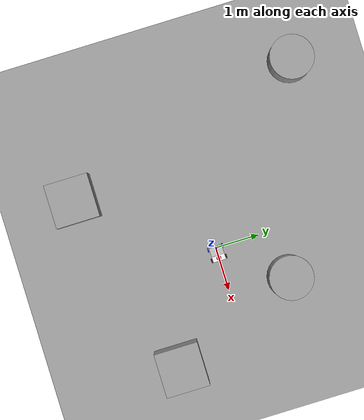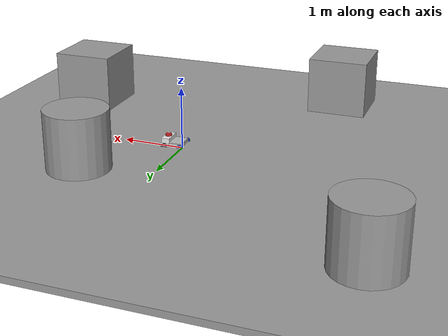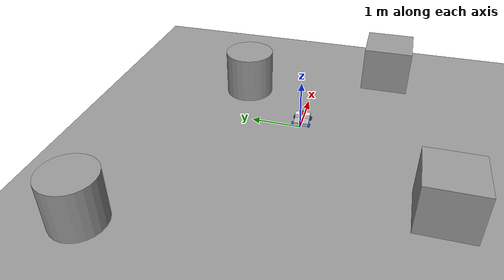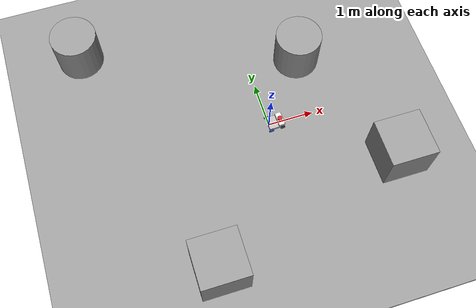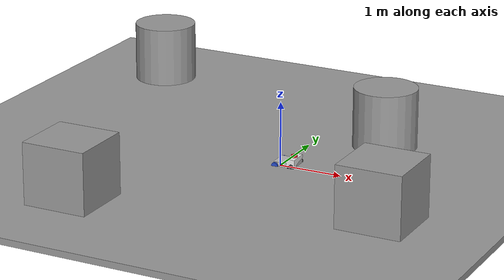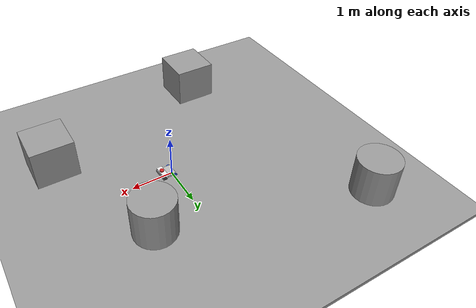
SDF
<sdf version="1.7">
 <world name="default">
  <light name="sun" type="directional">
   <pose>0 0 10 0 -0 0</pose>
   <diffuse>0.8 0.8 0.8 1</diffuse>
   <specular>0.2 0.2 0.2 1</specular>
   <attenuation>
    <range>1000</range>
    <constant>0.9</constant>
    <linear>0.01</linear>
    <quadratic>0.001</quadratic>
   </attenuation>
   <direction>-0.5 0.1 -0.9</direction>
   <spot><inner_angle>0</inner_angle><outer_angle>0</outer_angle><falloff>0</falloff></spot>
  </light>
  <model name="ground_plane">
   <static>1</static>
   <link name="link">
    <collision name="collision">
     <geometry><plane><normal>0 0 1</normal><size>100 100</size></plane></geometry>
     <surface>
      <contact><collide_bitmask>65535</collide_bitmask></contact>
      <friction><ode><mu>100</mu><mu2>50</mu2></ode></friction>
     </surface>
    </collision>
    <visual name="visual">
     <cast_shadows>0</cast_shadows>
     <geometry><plane><normal>0 0 1</normal><size>100 100</size></plane></geometry>
     <material>
      <script><uri>file://media/materials/scripts/gazebo.material</uri><name>Gazebo/Grey</name></script>
     </material>
    </visual>
   </link>
  </model>
  <gravity>0 0 -9.8</gravity>
  <magnetic_field>6e-06 2.3e-05 -4.2e-05</magnetic_field>
  <atmosphere type="adiabatic"/>
  <physics type="ode">
   <max_step_size>0.001</max_step_size>
   <real_time_factor>1</real_time_factor>
   <real_time_update_rate>1000</real_time_update_rate>
  </physics>
  <scene><ambient>0.4 0.4 0.4 1</ambient><background>0.7 0.7 0.7 1</background><shadows>1</shadows></scene>
  <audio><device>default</device></audio>
  <spherical_coordinates>
   <surface_model>EARTH_WGS84</surface_model>
   <latitude_deg>0</latitude_deg>
   <longitude_deg>0</longitude_deg>
   <elevation>0</elevation>
   <heading_deg>0</heading_deg>
  </spherical_coordinates>
  <model name="my_bot">
   <link name="base_link">
    <inertial>
     <pose>0.21274 0 0.031884 0 -0 0</pose>
     <mass>1.46</mass>
     <inertia>
      <ixx>0.0213768</ixx>
      <ixy>0</ixy>
      <ixz>-0.000714216</ixz>
      <iyy>0.013284</iyy>
      <iyz>-8.4855e-20</iyz>
      <izz>0.0279044</izz>
     </inertia>
    </inertial>
    <collision name="base_link_collision">
     <pose>0.14 0 0.015 0 -0 0</pose>
     <geometry><box><size>0.34 0.3 0.09</size></box></geometry>
    </collision>
    <collision name="base_link_fixed_joint_lump__F_left_wheel_collision_1">
     <pose>0.26 0.17 0 1.5708 -0 0</pose>
     <geometry><cylinder><length>0.03</length><radius>0.052</radius></cylinder></geometry>
     <surface><friction><ode><mu>0.001</mu><mu2>0.001</mu2></ode></friction></surface>
    </collision>
    <collision name="base_link_fixed_joint_lump__F_right_wheel_collision_2">
     <pose>0.26 -0.17 0 1.5708 -0 0</pose>
     <geometry><cylinder><length>0.03</length><radius>0.052</radius></cylinder></geometry>
     <surface><friction><ode><mu>0.001</mu><mu2>0.001</mu2></ode></friction></surface>
    </collision>
    <collision name="base_link_fixed_joint_lump__chassis_collision_3">
     <pose>0.245 0 0.05 0 -0 0</pose>
     <geometry><box><size>0.13 0.3 0.15</size></box></geometry>
    </collision>
    <collision name="base_link_fixed_joint_lump__laser_frame_collision_4">
     <pose>0.245 0 0.1405 0 -0 0</pose>
     <geometry><cylinder><length>0.03</length><radius>0.052</radius></cylinder></geometry>
    </collision>
    <visual name="base_link_visual">
     <pose>0.14 0 0.015 0 -0 0</pose>
     <geometry><box><size>0.34 0.3 0.09</size></box></geometry>
    </visual>
    <visual name="base_link_fixed_joint_lump__F_left_wheel_visual_1">
     <pose>0.26 0.17 0 1.5708 -0 0</pose>
     <geometry><cylinder><length>0.03</length><radius>0.052</radius></cylinder></geometry>
     <material>
      <script><name>Gazebo/Black</name><uri>file://media/materials/scripts/gazebo.material</uri></script>
     </material>
    </visual>
    <visual name="base_link_fixed_joint_lump__F_right_wheel_visual_2">
     <pose>0.26 -0.17 0 1.5708 -0 0</pose>
     <geometry><cylinder><length>0.03</length><radius>0.052</radius></cylinder></geometry>
     <material>
      <script><name>Gazebo/Black</name><uri>file://media/materials/scripts/gazebo.material</uri></script>
     </material>
    </visual>
    <visual name="base_link_fixed_joint_lump__chassis_visual_3">
     <pose>0.245 0 0.05 0 -0 0</pose>
     <geometry><box><size>0.13 0.3 0.15</size></box></geometry>
     <material>
      <script><name>Gazebo/White</name><uri>file://media/materials/scripts/gazebo.material</uri></script>
     </material>
    </visual>
    <visual name="base_link_fixed_joint_lump__laser_frame_visual_4">
     <pose>0.245 0 0.1405 0 -0 0</pose>
     <geometry><cylinder><length>0.03</length><radius>0.052</radius></cylinder></geometry>
     <material>
      <script><name>Gazebo/Red</name><uri>file://media/materials/scripts/gazebo.material</uri></script>
     </material>
    </visual>
    <sensor name="laser" type="ray">
     <visualize>1</visualize>
     <update_rate>10</update_rate>
     <ray>
      <scan>
       <horizontal>
        <samples>360</samples>
        <min_angle>-3.14</min_angle>
        <max_angle>3.14</max_angle>
        <resolution>1</resolution>
       </horizontal>
       <vertical><samples>1</samples><min_angle>0</min_angle><max_angle>0</max_angle></vertical>
      </scan>
      <range><min>0.3</min><max>12</max></range>
     </ray>
     <plugin name="laser_controller" filename="libgazebo_ros_ray_sensor.so">
      <ros><argument>~/out:=scan</argument></ros>
      <output_type>sensor_msgs/LaserScan</output_type>
      <frame_name>laser_frame</frame_name>
     </plugin>
     <pose>0.245 0 0.1405 0 -0 0</pose>
    </sensor>
   </link>
   <joint name="left_wheel_joint" type="revolute">
    <pose relative_to="base_link">0 0.17 0 -1.5708 0 0</pose>
    <parent>base_link</parent>
    <child>left_wheel</child>
    <axis>
     <xyz>0 0 1</xyz>
     <limit><lower>-1e+16</lower><upper>1e+16</upper></limit>
     <dynamics><spring_reference>0</spring_reference><spring_stiffness>0</spring_stiffness></dynamics>
    </axis>
   </joint>
   <link name="left_wheel">
    <pose relative_to="left_wheel_joint">0 0 0 0 -0 0</pose>
    <inertial>
     <mass>0.18</mass>
     <inertia>
      <ixx>0.00013518</ixx>
      <ixy>0</ixy>
      <ixz>0</ixz>
      <iyy>0.00013518</iyy>
      <iyz>0</iyz>
      <izz>0.00024336</izz>
     </inertia>
    </inertial>
    <collision name="left_wheel_collision">
     <geometry><cylinder><length>0.03</length><radius>0.052</radius></cylinder></geometry>
    </collision>
    <visual name="left_wheel_visual">
     <geometry><cylinder><length>0.03</length><radius>0.052</radius></cylinder></geometry>
     <material>
      <script><name>Gazebo/Blue</name><uri>file://media/materials/scripts/gazebo.material</uri></script>
     </material>
    </visual>
   </link>
   <joint name="right_wheel_joint" type="revolute">
    <pose relative_to="base_link">0 -0.17 0 -1.5708 0 0</pose>
    <parent>base_link</parent>
    <child>right_wheel</child>
    <axis>
     <xyz>0 0 1</xyz>
     <limit><lower>-1e+16</lower><upper>1e+16</upper></limit>
     <dynamics><spring_reference>0</spring_reference><spring_stiffness>0</spring_stiffness></dynamics>
    </axis>
   </joint>
   <link name="right_wheel">
    <pose relative_to="right_wheel_joint">0 0 0 0 -0 0</pose>
    <inertial>
     <mass>0.18</mass>
     <inertia>
      <ixx>0.00013518</ixx>
      <ixy>0</ixy>
      <ixz>0</ixz>
      <iyy>0.00013518</iyy>
      <iyz>0</iyz>
      <izz>0.00024336</izz>
     </inertia>
    </inertial>
    <collision name="right_wheel_collision">
     <geometry><cylinder><length>0.03</length><radius>0.052</radius></cylinder></geometry>
    </collision>
    <visual name="right_wheel_visual">
     <geometry><cylinder><length>0.03</length><radius>0.052</radius></cylinder></geometry>
     <material>
      <script><name>Gazebo/Blue</name><uri>file://media/materials/scripts/gazebo.material</uri></script>
     </material>
    </visual>
   </link>
   <static>0</static>
   <plugin name="gazebo_ros2_control" filename="libgazebo_ros2_control.so">
    <parameters>/home/stag/dev_ma/install/ros_robot_prj/share/ros_robot_prj/config/my_controllers.yaml</parameters>
   </plugin>
   <pose>-0.006186 -0.018207 0.052 0 -0 0.03306</pose>
  </model>
  <model name="ground_plane_0">
   <static>1</static>
   <link name="link">
    <collision name="collision">
     <geometry><plane><normal>0 0 1</normal><size>100 100</size></plane></geometry>
     <surface>
      <contact><collide_bitmask>65535</collide_bitmask></contact>
      <friction><ode><mu>100</mu><mu2>50</mu2></ode></friction>
     </surface>
    </collision>
    <visual name="visual">
     <cast_shadows>0</cast_shadows>
     <geometry><plane><normal>0 0 1</normal><size>100 100</size></plane></geometry>
     <material>
      <script><uri>file://media/materials/scripts/gazebo.material</uri><name>Gazebo/Grey</name></script>
     </material>
    </visual>
   </link>
   <pose>-9.54303 3.63411 0 0 -0 0</pose>
  </model>
  <model name="unit_cylinder">
   <pose>-3.56867 2.82052 0.499993 4e-06 3e-06 -0</pose>
   <link name="link">
    <inertial>
     <mass>1</mass>
     <inertia><ixx>0.145833</ixx><ixy>0</ixy><ixz>0</ixz><iyy>0.145833</iyy><iyz>0</iyz><izz>0.125</izz></inertia>
    </inertial>
    <collision name="collision">
     <geometry><cylinder><radius>0.5</radius><length>1</length></cylinder></geometry>
    </collision>
    <visual name="visual">
     <geometry><cylinder><radius>0.5</radius><length>1</length></cylinder></geometry>
     <material>
      <script><name>Gazebo/Grey</name><uri>file://media/materials/scripts/gazebo.material</uri></script>
     </material>
    </visual>
   </link>
  </model>
  <model name="unit_box">
   <pose>-1.94929 -2.76158 0.499997 0 6e-06 0</pose>
   <link name="link">
    <inertial>
     <mass>1</mass>
     <inertia>
      <ixx>0.166667</ixx>
      <ixy>0</ixy>
      <ixz>0</ixz>
      <iyy>0.166667</iyy>
      <iyz>0</iyz>
      <izz>0.166667</izz>
     </inertia>
    </inertial>
    <collision name="collision"><geometry><box><size>1 1 1</size></box></geometry></collision>
    <visual name="visual">
     <geometry><box><size>1 1 1</size></box></geometry>
     <material>
      <script><name>Gazebo/Grey</name><uri>file://media/materials/scripts/gazebo.material</uri></script>
     </material>
    </visual>
   </link>
  </model>
  <model name="unit_cylinder_0">
   <pose>1.09983 1.38528 0.499993 4e-06 4e-06 -0</pose>
   <link name="link">
    <inertial>
     <mass>1</mass>
     <inertia><ixx>0.145833</ixx><ixy>0</ixy><ixz>0</ixz><iyy>0.145833</iyy><iyz>0</iyz><izz>0.125</izz></inertia>
    </inertial>
    <collision name="collision">
     <geometry><cylinder><radius>0.5</radius><length>1</length></cylinder></geometry>
    </collision>
    <visual name="visual">
     <geometry><cylinder><radius>0.5</radius><length>1</length></cylinder></geometry>
     <material>
      <script><name>Gazebo/Grey</name><uri>file://media/materials/scripts/gazebo.material</uri></script>
     </material>
    </visual>
   </link>
  </model>
  <model name="unit_box_0">
   <pose>2.33528 -1.52833 0.499999 2e-06 -0 0</pose>
   <link name="link">
    <inertial>
     <mass>1</mass>
     <inertia>
      <ixx>0.166667</ixx>
      <ixy>0</ixy>
      <ixz>0</ixz>
      <iyy>0.166667</iyy>
      <iyz>0</iyz>
      <izz>0.166667</izz>
     </inertia>
    </inertial>
    <collision name="collision"><geometry><box><size>1 1 1</size></box></geometry></collision>
    <visual name="visual">
     <geometry><box><size>1 1 1</size></box></geometry>
     <material>
      <script><name>Gazebo/Grey</name><uri>file://media/materials/scripts/gazebo.material</uri></script>
     </material>
    </visual>
   </link>
  </model>
 </world>
</sdf>
